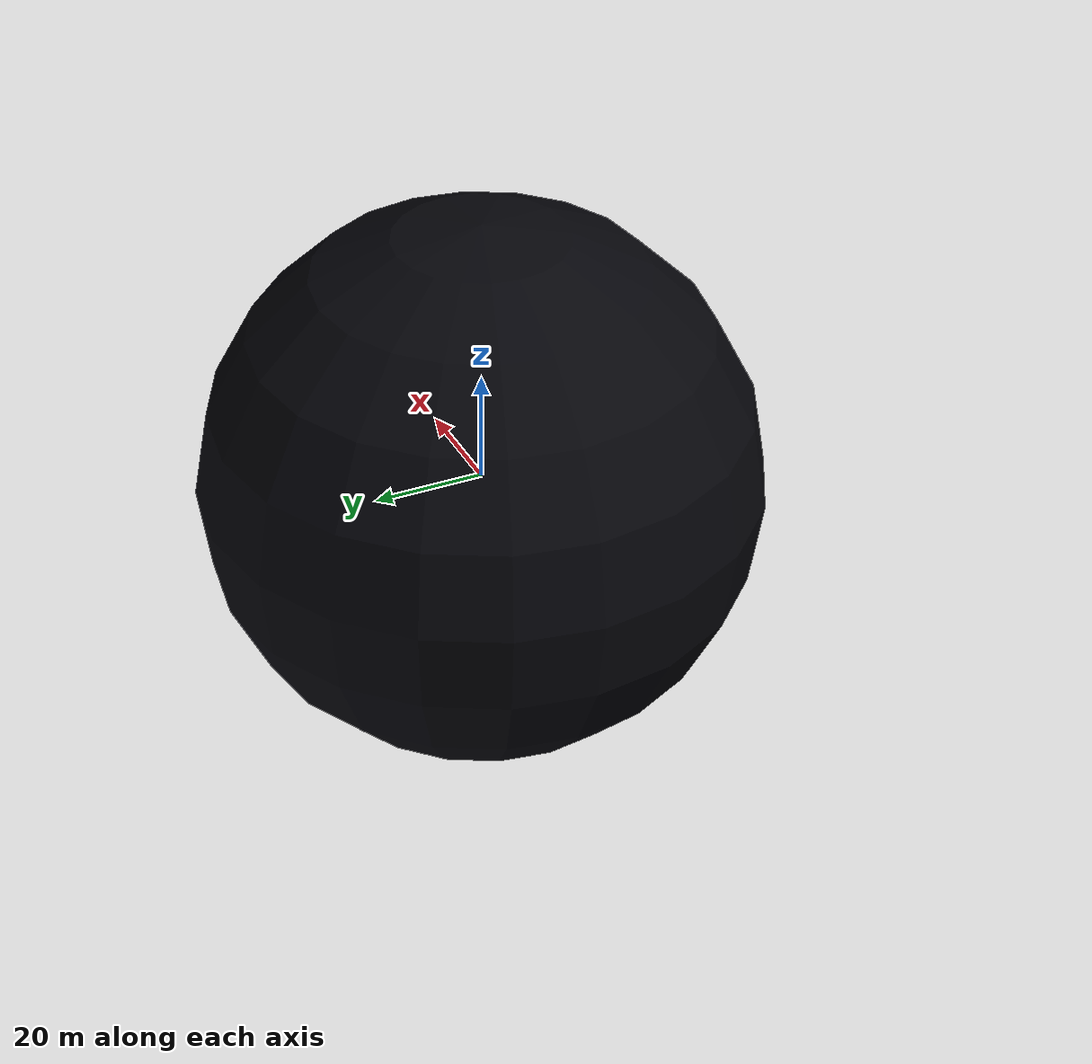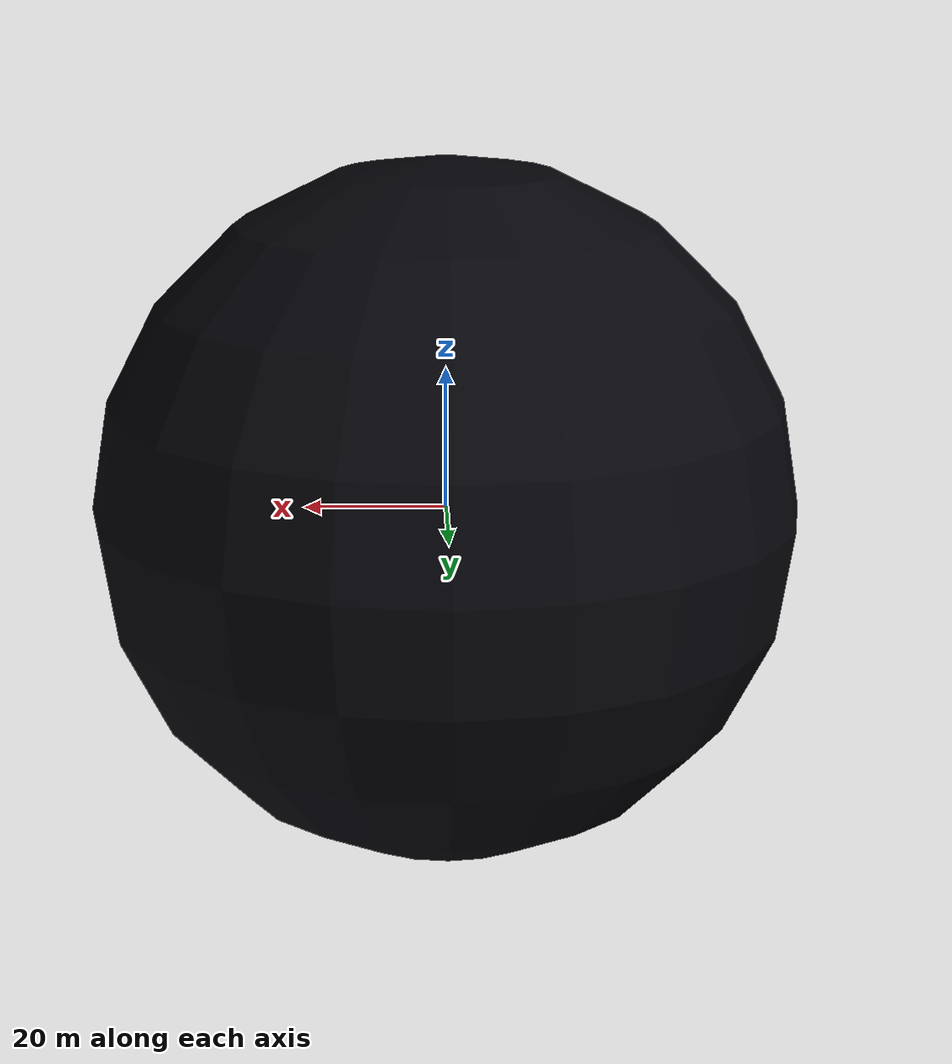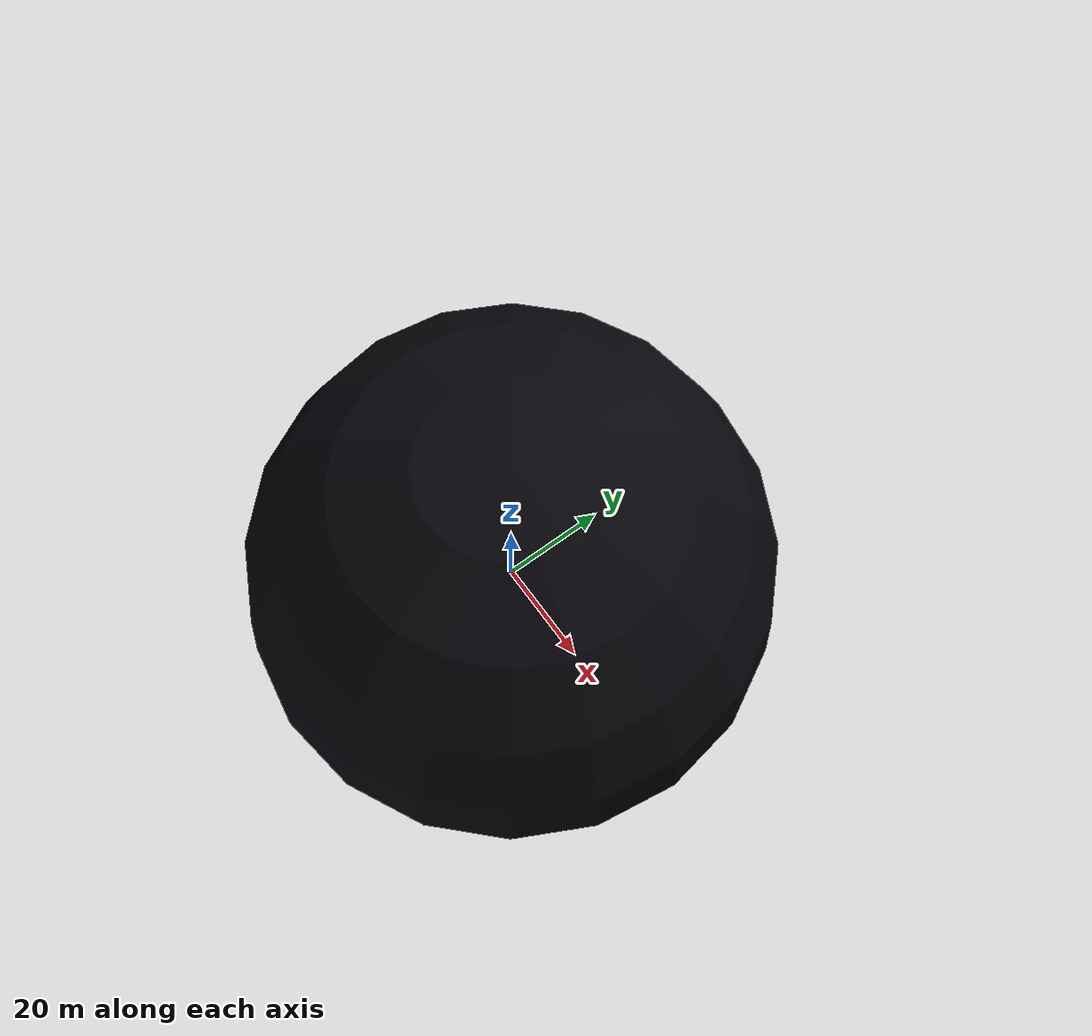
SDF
<?xml version="1.0"?>
<sdf version="1.6">
  <world name="space_environment">

    <!-- ============ Physics: Microgravity ============ -->
    <physics type="ode">
      <gravity>0 0 0</gravity>
      <max_step_size>0.001</max_step_size>
      <real_time_factor>1.0</real_time_factor>
      <real_time_update_rate>1000</real_time_update_rate>
      <ode>
        <solver>
          <type>quick</type>
          <iters>50</iters>
          <sor>1.3</sor>
        </solver>
        <constraints>
          <cfm>0.0</cfm>
          <erp>0.2</erp>
        </constraints>
      </ode>
    </physics>

    <!-- ============ Scene: Dark space background ============ -->
    <scene>
      <ambient>0.1 0.1 0.15 1.0</ambient>
      <background>0.02 0.02 0.05 1.0</background>
      <shadows>true</shadows>
    </scene>

    <!-- ============ Lighting: Simulate sunlight ============ -->
    <!-- Main directional "sun" light -->
    <light name="sun" type="directional">
      <cast_shadows>true</cast_shadows>
      <pose>0 0 10 0 0 0</pose>
      <diffuse>1.0 0.98 0.95 1</diffuse>
      <specular>0.5 0.5 0.5 1</specular>
      <direction>-0.5 0.3 -1.0</direction>
    </light>

    <!-- Ambient fill light (simulating reflected Earth albedo) -->
    <light name="earth_albedo" type="directional">
      <cast_shadows>false</cast_shadows>
      <pose>0 0 -5 0 0 0</pose>
      <diffuse>0.1 0.12 0.15 1</diffuse>
      <specular>0.0 0.0 0.0 1</specular>
      <direction>0 0 1</direction>
    </light>

    <!-- ============ Spacecraft Base Platform ============ -->
    <model name="spacecraft_platform">
      <static>true</static>
      <pose>0 0 -0.05 0 0 0</pose>
      <link name="platform_link">
        <visual name="platform_visual">
          <geometry>
            <box><size>1.0 0.6 0.1</size></box>
          </geometry>
          <material>
            <ambient>0.4 0.4 0.45 1</ambient>
            <diffuse>0.5 0.5 0.55 1</diffuse>
            <specular>0.3 0.3 0.3 1</specular>
          </material>
        </visual>
        <collision name="platform_collision">
          <geometry>
            <box><size>1.0 0.6 0.1</size></box>
          </geometry>
        </collision>
      </link>

      <!-- Solar panel left -->
      <link name="solar_panel_left">
        <pose>0 -0.8 0 0 0 0</pose>
        <visual name="panel_visual">
          <geometry>
            <box><size>0.8 0.5 0.02</size></box>
          </geometry>
          <material>
            <ambient>0.05 0.05 0.2 1</ambient>
            <diffuse>0.1 0.1 0.4 1</diffuse>
            <specular>0.6 0.6 0.8 1</specular>
          </material>
        </visual>
      </link>

      <!-- Solar panel right -->
      <link name="solar_panel_right">
        <pose>0 0.8 0 0 0 0</pose>
        <visual name="panel_visual">
          <geometry>
            <box><size>0.8 0.5 0.02</size></box>
          </geometry>
          <material>
            <ambient>0.05 0.05 0.2 1</ambient>
            <diffuse>0.1 0.1 0.4 1</diffuse>
            <specular>0.6 0.6 0.8 1</specular>
          </material>
        </visual>
      </link>

      <joint name="left_panel_joint" type="fixed">
        <parent>platform_link</parent>
        <child>solar_panel_left</child>
      </joint>
      <joint name="right_panel_joint" type="fixed">
        <parent>platform_link</parent>
        <child>solar_panel_right</child>
      </joint>
    </model>

    <!-- ============ Target Satellite (for servicing) ============ -->
    <model name="target_satellite">
      <pose>1.5 0 0.5 0.1 0.2 0.3</pose>
      <static>true</static>
      <link name="satellite_body">
        <visual name="body_visual">
          <geometry>
            <box><size>0.3 0.3 0.4</size></box>
          </geometry>
          <material>
            <ambient>0.6 0.6 0.3 1</ambient>
            <diffuse>0.8 0.8 0.4 1</diffuse>
          </material>
        </visual>
        <collision name="body_collision">
          <geometry>
            <box><size>0.3 0.3 0.4</size></box>
          </geometry>
        </collision>
      </link>

      <!-- ArUco-like marker panel on the target -->
      <link name="marker_panel">
        <pose>0.151 0 0 0 1.5708 0</pose>
        <visual name="marker_visual">
          <geometry>
            <box><size>0.1 0.1 0.001</size></box>
          </geometry>
          <material>
            <ambient>1 1 1 1</ambient>
            <diffuse>1 1 1 1</diffuse>
          </material>
        </visual>
      </link>

      <joint name="marker_joint" type="fixed">
        <parent>satellite_body</parent>
        <child>marker_panel</child>
      </joint>
    </model>

    <!-- ============ Floating Debris (small objects) ============ -->
    <model name="debris_1">
      <pose>0.8 0.5 0.8 0.5 0.3 0.1</pose>
      <static>false</static>
      <link name="debris_link">
        <inertial>
          <mass>0.1</mass>
          <inertia>
            <ixx>0.0001</ixx><ixy>0</ixy><ixz>0</ixz>
            <iyy>0.0001</iyy><iyz>0</iyz><izz>0.0001</izz>
          </inertia>
        </inertial>
        <visual name="debris_visual">
          <geometry>
            <box><size>0.05 0.08 0.03</size></box>
          </geometry>
          <material>
            <ambient>0.5 0.5 0.5 1</ambient>
            <diffuse>0.6 0.6 0.6 1</diffuse>
          </material>
        </visual>
        <collision name="debris_collision">
          <geometry>
            <box><size>0.05 0.08 0.03</size></box>
          </geometry>
        </collision>
      </link>
    </model>

    <!-- ============ Starfield backdrop ============ -->
    <model name="starfield">
      <static>true</static>
      <pose>0 0 0 0 0 0</pose>
      <link name="starfield_link">
        <visual name="star_sphere">
          <geometry>
            <sphere><radius>50</radius></sphere>
          </geometry>
          <material>
            <ambient>0.01 0.01 0.02 1</ambient>
            <diffuse>0.02 0.02 0.04 1</diffuse>
            <emissive>0.01 0.01 0.02 1</emissive>
          </material>
        </visual>
      </link>
    </model>

  </world>
</sdf>
